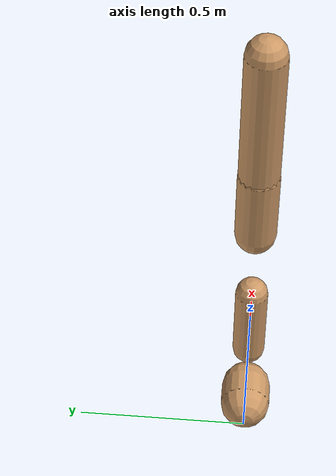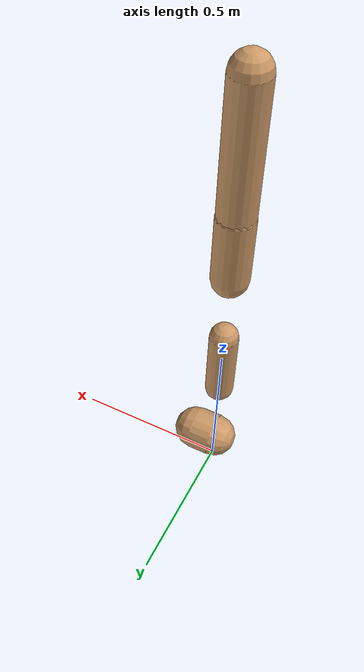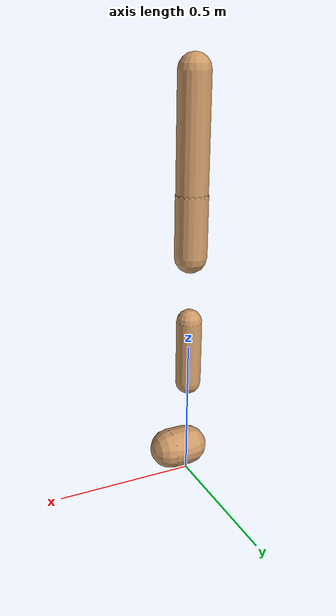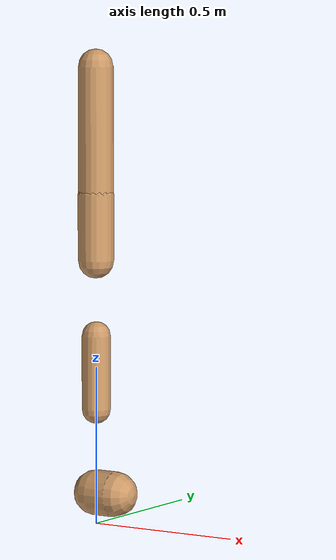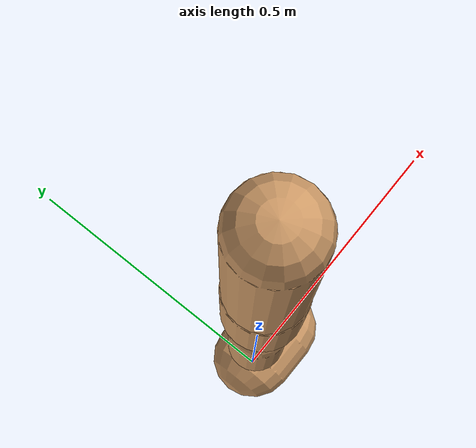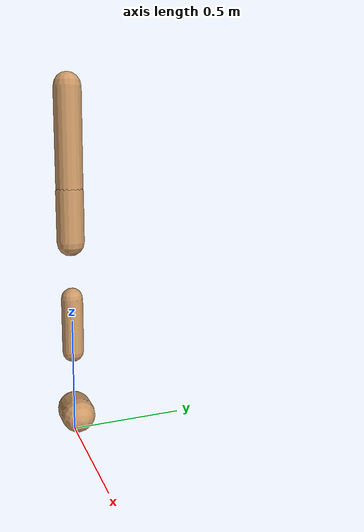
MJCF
<mujoco model="walker2d">
  <compiler angle="degree" coordinate="global" inertiafromgeom="true" />
  <default>
    <joint armature="0.01" damping=".1" limited="true" />
    <geom conaffinity="0" condim="3" contype="1" density="1000" friction="0.8 .1 .1" rgba="0.8 0.6 .4 1" />
  </default>
  <option integrator="RK4" timestep="0.002" />
  <worldbody>

    <body name="torso" pos="0 0 -0.5060648830488956">
      <joint armature="0" axis="1 0 0" damping="0" limited="false" name="ignorex" pos="0 0 0" stiffness="0" type="slide" />
      <joint armature="0" axis="0 0 1" damping="0" limited="false" name="ignorez" pos="0 0 0" ref="1.25" stiffness="0" type="slide" />
      <joint armature="0" axis="0 1 0" damping="0" limited="false" name="ignorey" pos="0 0 0" stiffness="0" type="hinge" />
      <geom fromto="0 0 1.45 0 0 1.05" name="torso_geom" size="0.05552013149085764" type="capsule" />
      <body name="thigh">
        <joint axis="0 -1 0" name="thigh_joint" pos="0 0 1.05" range="-150 0" type="hinge" />
        <geom fromto="0.0 0.0 1.05 0.0 0.0 0.8397149446021085" name="thigh_geom" size="0.05693810033470606" type="capsule" />
        <body name="leg" pos="0.0 0.0 0.23971494460210852">
          <joint axis="0 -1 0" name="leg_joint" pos="0 0 0.6" range="-150 0" type="hinge" />
          <geom fromto="0.0 0.0 0.6 0.0 0.0 0.3663499384467872" name="leg_geom" size="0.04555048026776484" type="capsule" />
          <body name="foot" pos="0.0 0.0 0.2663499384467872">
            <joint axis="0 -1 0" name="foot_joint" pos="0 0 0.1" range="-45 45" type="hinge" />
            <geom fromto="0.0 0.0 0.1 0.06963904204387583 0.0 0.1" name="foot_geom" size="0.07226871686794774" type="capsule" />
          </body>
        </body>
      </body>

      <body name="thigh_left">
        <joint axis="0 -1 0" name="thigh_left_joint" pos="0 0 1.05" range="-150 0" type="hinge" />
        <geom fromto="0.0 0.0 1.05 0.0 0.0 0.8397149446021085" name="thigh_left_geom" rgba=".7 .3 .6 1" size="0.05693810033470606" type="capsule" />
        <body name="leg_left" pos="0.0 0.0 0.23971494460210852">
          <joint axis="0 -1 0" name="leg_left_joint" pos="0 0 0.6" range="-150 0" type="hinge" />
          <geom fromto="0.0 0.0 0.6 0.0 0.0 0.3663499384467872" name="leg_left_geom" rgba=".7 .3 .6 1" size="0.04555048026776484" type="capsule" />
          <body name="foot_left" pos="0.0 0.0 0.2663499384467872">
            <joint axis="0 -1 0" name="foot_left_joint" pos="0 0 0.1" range="-45 45" type="hinge" />
            <geom fromto="0.0 0.0 0.1 0.06963904204387583 0.0 0.1" name="foot_left_geom" rgba=".7 .3 .6 1" size="0.07226871686794774" type="capsule" />
          </body>
        </body>
      </body>
    </body>
  </worldbody>
  <actuator>

    <motor ctrllimited="true" ctrlrange="-1.0 1.0" gear="100" joint="thigh_joint" />
    <motor ctrllimited="true" ctrlrange="-1.0 1.0" gear="100" joint="leg_joint" />
    <motor ctrllimited="true" ctrlrange="-1.0 1.0" gear="100" joint="foot_joint" />
    <motor ctrllimited="true" ctrlrange="-1.0 1.0" gear="100" joint="thigh_left_joint" />
    <motor ctrllimited="true" ctrlrange="-1.0 1.0" gear="100" joint="leg_left_joint" />
    <motor ctrllimited="true" ctrlrange="-1.0 1.0" gear="100" joint="foot_left_joint" />

  </actuator>
</mujoco>
